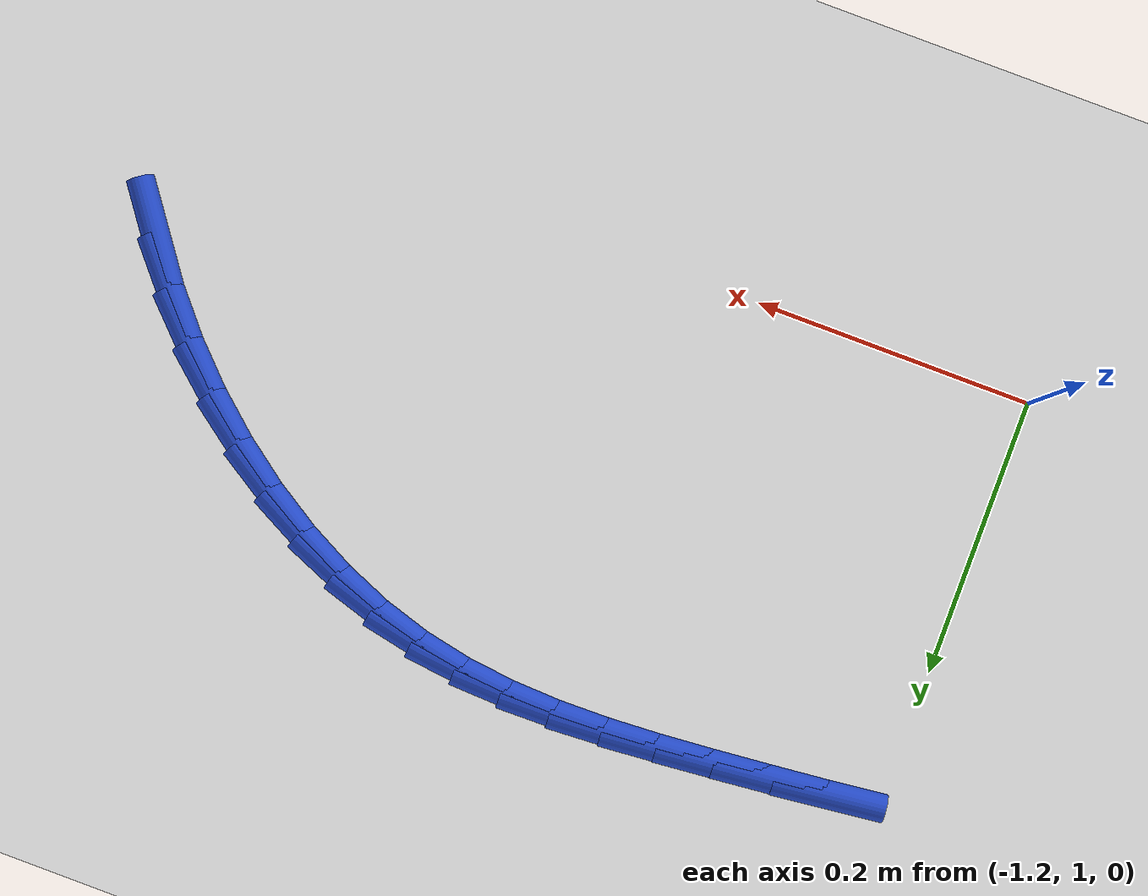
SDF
<sdf version="1.6">
 <world name="default">
  <model name="ground_plane">
   <static>1</static>
   <link name="link">
    <collision name="collision">
     <geometry><plane><normal>0 0 1</normal><size>100 100</size></plane></geometry>
     <surface><friction><ode><mu>100</mu><mu2>50</mu2></ode></friction></surface>
    </collision>
    <visual name="visual">
     <cast_shadows>0</cast_shadows>
     <geometry><plane><normal>0 0 1</normal><size>100 100</size></plane></geometry>
     <material>
      <script><uri>file://media/materials/scripts/gazebo.material</uri><name>Gazebo/WhiteGlow</name></script>
     </material>
    </visual>
   </link>
  </model>
  <model name="line">
   <link name="link_36">
    <pose>-0.5907443147892778 1.1021673614734402 0.01 0 1.57 -0.9462250457985829</pose>
    <collision name="collision">
     <geometry><cylinder><radius>0.01</radius><length>0.08</length></cylinder></geometry>
    </collision>
    <visual name="visual">
     <material>
      <script><name>Gazebo/Blue</name><uri>file://media/materials/scripts/gazebo.material</uri></script>
     </material>
     <geometry><cylinder><radius>0.01</radius><length>0.08</length></cylinder></geometry>
    </visual>
   </link>
   <link name="link_37">
    <pose>-0.6138505537127904 1.1342222849769592 0.01 0 1.57 -0.8673585869584852</pose>
    <collision name="collision">
     <geometry><cylinder><radius>0.01</radius><length>0.08</length></cylinder></geometry>
    </collision>
    <visual name="visual">
     <material>
      <script><name>Gazebo/Blue</name><uri>file://media/materials/scripts/gazebo.material</uri></script>
     </material>
     <geometry><cylinder><radius>0.01</radius><length>0.08</length></cylinder></geometry>
    </visual>
   </link>
   <link name="link_38">
    <pose>-0.639477511822528 1.1644362658235883 0.01 0 1.57 -0.7909131961647354</pose>
    <collision name="collision">
     <geometry><cylinder><radius>0.01</radius><length>0.08</length></cylinder></geometry>
    </collision>
    <visual name="visual">
     <material>
      <script><name>Gazebo/Blue</name><uri>file://media/materials/scripts/gazebo.material</uri></script>
     </material>
     <geometry><cylinder><radius>0.01</radius><length>0.08</length></cylinder></geometry>
    </visual>
   </link>
   <link name="link_39">
    <pose>-0.6672977909536592 1.1925651093277492 0.01 0 1.57 -0.7154639071690265</pose>
    <collision name="collision">
     <geometry><cylinder><radius>0.01</radius><length>0.08</length></cylinder></geometry>
    </collision>
    <visual name="visual">
     <material>
      <script><name>Gazebo/Blue</name><uri>file://media/materials/scripts/gazebo.material</uri></script>
     </material>
     <geometry><cylinder><radius>0.01</radius><length>0.08</length></cylinder></geometry>
    </visual>
   </link>
   <link name="link_40">
    <pose>-0.6969839929413528 1.2183646208038634 0.01 0 1.57 -0.639542585867524</pose>
    <collision name="collision">
     <geometry><cylinder><radius>0.01</radius><length>0.08</length></cylinder></geometry>
    </collision>
    <visual name="visual">
     <material>
      <script><name>Gazebo/Blue</name><uri>file://media/materials/scripts/gazebo.material</uri></script>
     </material>
     <geometry><cylinder><radius>0.01</radius><length>0.08</length></cylinder></geometry>
    </visual>
   </link>
   <link name="link_41">
    <pose>-0.7282087196207772 1.2415906055663526 0.01 0 1.57 -0.5616055477025852</pose>
    <collision name="collision">
     <geometry><cylinder><radius>0.01</radius><length>0.08</length></cylinder></geometry>
    </collision>
    <visual name="visual">
     <material>
      <script><name>Gazebo/Blue</name><uri>file://media/materials/scripts/gazebo.material</uri></script>
     </material>
     <geometry><cylinder><radius>0.01</radius><length>0.08</length></cylinder></geometry>
    </visual>
   </link>
   <link name="link_42">
    <pose>-0.760644572827101 1.2619988689296384 0.01 0 1.57 -0.4799955558753285</pose>
    <collision name="collision">
     <geometry><cylinder><radius>0.01</radius><length>0.08</length></cylinder></geometry>
    </collision>
    <visual name="visual">
     <material>
      <script><name>Gazebo/Blue</name><uri>file://media/materials/scripts/gazebo.material</uri></script>
     </material>
     <geometry><cylinder><radius>0.01</radius><length>0.08</length></cylinder></geometry>
    </visual>
   </link>
   <link name="link_43">
    <pose>-0.7939641543954931 1.279345216208143 0.01 0 1.57 -0.39291006900240555</pose>
    <collision name="collision">
     <geometry><cylinder><radius>0.01</radius><length>0.08</length></cylinder></geometry>
    </collision>
    <visual name="visual">
     <material>
      <script><name>Gazebo/Blue</name><uri>file://media/materials/scripts/gazebo.material</uri></script>
     </material>
     <geometry><cylinder><radius>0.01</radius><length>0.08</length></cylinder></geometry>
    </visual>
   </link>
   <link name="link_44">
    <pose>-0.8278400661611217 1.293385452716287 0.01 0 1.57 -0.2986195110437447</pose>
    <collision name="collision">
     <geometry><cylinder><radius>0.01</radius><length>0.08</length></cylinder></geometry>
    </collision>
    <visual name="visual">
     <material>
      <script><name>Gazebo/Blue</name><uri>file://media/materials/scripts/gazebo.material</uri></script>
     </material>
     <geometry><cylinder><radius>0.01</radius><length>0.08</length></cylinder></geometry>
    </visual>
   </link>
   <link name="link_45">
    <pose>-0.8619540198410135 1.3038865568959812 0.01 0 1.57 -0.20281036869704078</pose>
    <collision name="collision">
     <geometry><cylinder><radius>0.01</radius><length>0.08</length></cylinder></geometry>
    </collision>
    <visual name="visual">
     <material>
      <script><name>Gazebo/Blue</name><uri>file://media/materials/scripts/gazebo.material</uri></script>
     </material>
     <geometry><cylinder><radius>0.01</radius><length>0.08</length></cylinder></geometry>
    </visual>
   </link>
   <link name="link_46">
    <pose>-0.89625187873056 1.3109394849648546 0.01 0 1.57 -0.11644165517910625</pose>
    <collision name="collision">
     <geometry><cylinder><radius>0.01</radius><length>0.08</length></cylinder></geometry>
    </collision>
    <visual name="visual">
     <material>
      <script><name>Gazebo/Blue</name><uri>file://media/materials/scripts/gazebo.material</uri></script>
     </material>
     <geometry><cylinder><radius>0.01</radius><length>0.08</length></cylinder></geometry>
    </visual>
   </link>
   <link name="link_47">
    <pose>-0.9309781221933072 1.3150014410734607 0.01 0 1.57 -0.04367823381119316</pose>
    <collision name="collision">
     <geometry><cylinder><radius>0.01</radius><length>0.08</length></cylinder></geometry>
    </collision>
    <visual name="visual">
     <material>
      <script><name>Gazebo/Blue</name><uri>file://media/materials/scripts/gazebo.material</uri></script>
     </material>
     <geometry><cylinder><radius>0.01</radius><length>0.08</length></cylinder></geometry>
    </visual>
   </link>
   <link name="link_48">
    <pose>-0.9663932648859114 1.3165492964083276 0.01 0 1.57 0.013456639079492546</pose>
    <collision name="collision">
     <geometry><cylinder><radius>0.01</radius><length>0.08</length></cylinder></geometry>
    </collision>
    <visual name="visual">
     <material>
      <script><name>Gazebo/Blue</name><uri>file://media/materials/scripts/gazebo.material</uri></script>
     </material>
     <geometry><cylinder><radius>0.01</radius><length>0.08</length></cylinder></geometry>
    </visual>
   </link>
   <link name="link_49">
    <pose>-1.0027578214650283 1.316059922155985 0.01 0 1.57 0.05449716873527923</pose>
    <collision name="collision">
     <geometry><cylinder><radius>0.01</radius><length>0.08</length></cylinder></geometry>
    </collision>
    <visual name="visual">
     <material>
      <script><name>Gazebo/Blue</name><uri>file://media/materials/scripts/gazebo.material</uri></script>
     </material>
     <geometry><cylinder><radius>0.01</radius><length>0.08</length></cylinder></geometry>
    </visual>
   </link>
   <link name="link_50">
    <pose>-1.0403323065873136 1.3140101895029597 0.01 0 1.57 0.08007493946452095</pose>
    <collision name="collision">
     <geometry><cylinder><radius>0.01</radius><length>0.08</length></cylinder></geometry>
    </collision>
    <visual name="visual">
     <material>
      <script><name>Gazebo/Blue</name><uri>file://media/materials/scripts/gazebo.material</uri></script>
     </material>
     <geometry><cylinder><radius>0.01</radius><length>0.08</length></cylinder></geometry>
    </visual>
   </link>
   <link name="link_51">
    <pose>-1.0793772349094235 1.3108769696357812 0.01 0 1.57 0.0915739408658708</pose>
    <collision name="collision">
     <geometry><cylinder><radius>0.01</radius><length>0.08</length></cylinder></geometry>
    </collision>
    <visual name="visual">
     <material>
      <script><name>Gazebo/Blue</name><uri>file://media/materials/scripts/gazebo.material</uri></script>
     </material>
     <geometry><cylinder><radius>0.01</radius><length>0.08</length></cylinder></geometry>
    </visual>
   </link>
   <link name="link_52">
    <pose>-1.1201480342559114 1.3071329555107138 0.01 0 1.57 0.0981125445259163</pose>
    <collision name="collision">
     <geometry><cylinder><radius>0.01</radius><length>0.08</length></cylinder></geometry>
    </collision>
    <visual name="visual">
     <material>
      <script><name>Gazebo/Blue</name><uri>file://media/materials/scripts/gazebo.material</uri></script>
     </material>
     <geometry><cylinder><radius>0.01</radius><length>0.08</length></cylinder></geometry>
    </visual>
   </link>
   <link name="link_53">
    <pose>-1.162545806466998 1.302959803241977 0.01 0 1.57 0.1124877998662112</pose>
    <collision name="collision">
     <geometry><cylinder><radius>0.01</radius><length>0.08</length></cylinder></geometry>
    </collision>
    <visual name="visual">
     <material>
      <script><name>Gazebo/Blue</name><uri>file://media/materials/scripts/gazebo.material</uri></script>
     </material>
     <geometry><cylinder><radius>0.01</radius><length>0.08</length></cylinder></geometry>
    </visual>
   </link>
  </model>
 </world>
</sdf>
